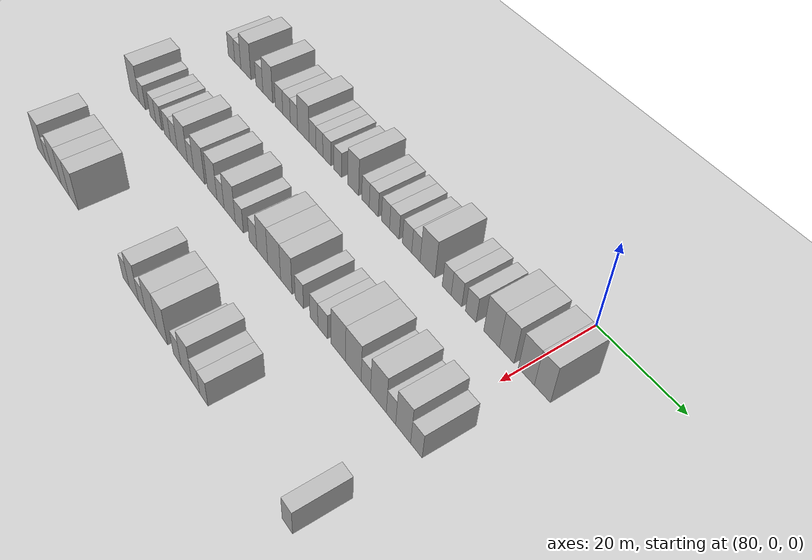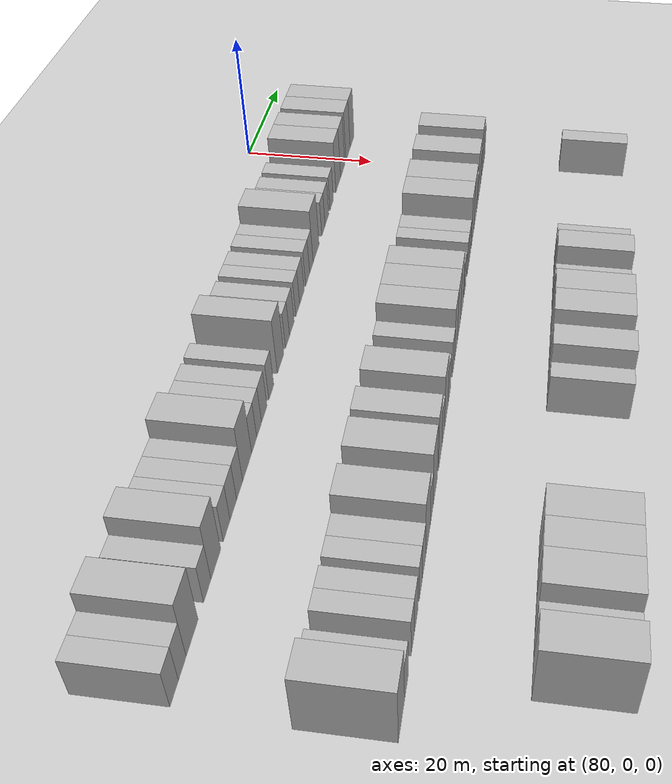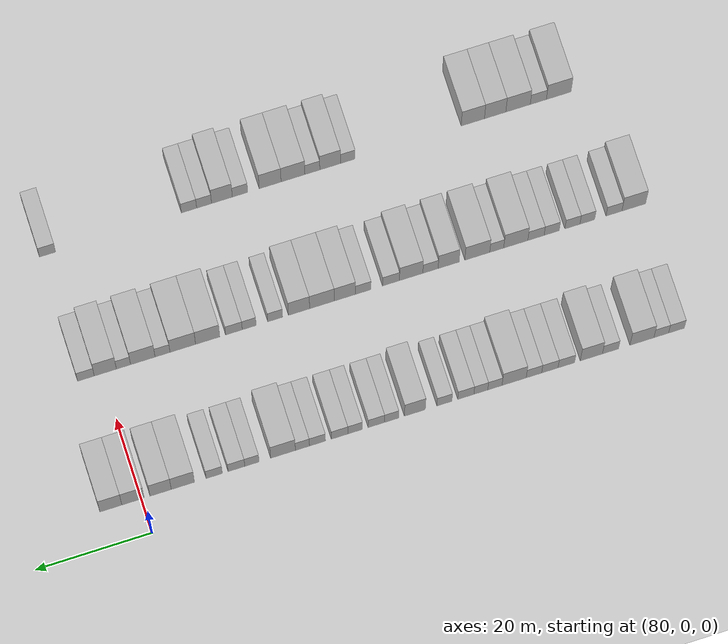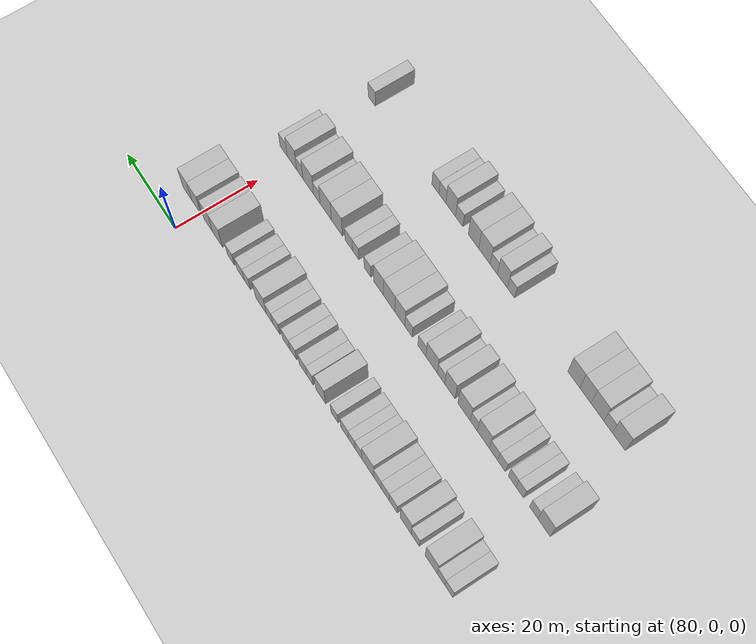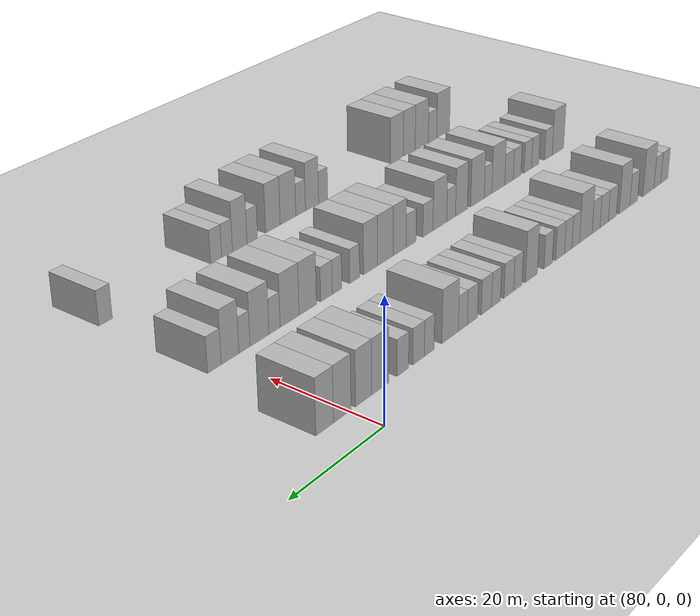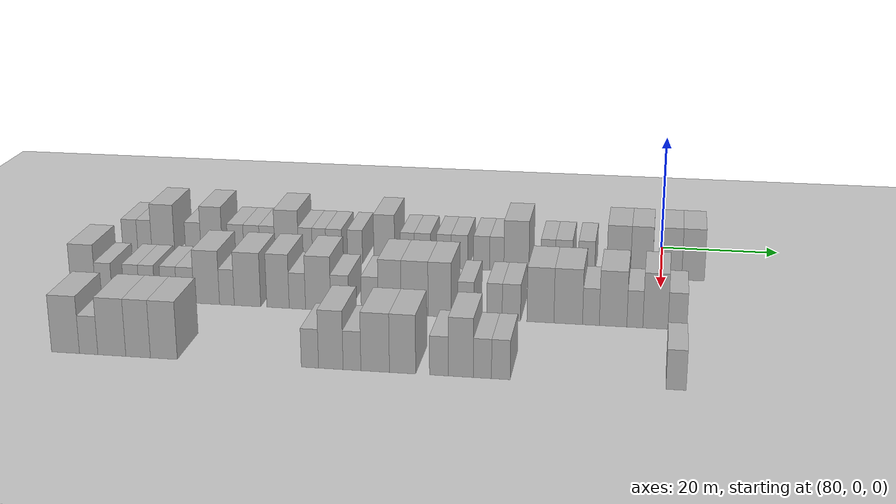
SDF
<sdf version="1.6">
 <world name="default">
  <include>
   <name>ground_plane_2</name>
   <uri>model://HANNAS_ground_plane</uri>
   <pose>100 0 0  0 0 0</pose>
  </include>
  <model name="building_644">
   <static>1</static>
   <pose>91.0000 -92.3657 0 0.000000 0.000000 0.000000</pose>
   <link name="link">
    <pose>0 0 3.00 0 0 0</pose>
    <collision name="collision"><geometry><box><size>10.0000 2.7340 6.0000</size></box></geometry></collision>
    <visual name="visual">
     <cast_shadows>0</cast_shadows>
     <geometry><box><size>10.0000 2.7340 6.0000</size></box></geometry>
     <material>
      <script>
       <uri>model://HANNAS_wall/materials/scripts</uri>
       <uri>model://HANNAS_wall/materials/textures</uri>
       <name>vrc/HANNAS_wall</name>
      </script>
     </material>
    </visual>
   </link>
  </model>
  <model name="building_645">
   <static>1</static>
   <pose>91.0000 -89.7164 0 0.000000 0.000000 0.000000</pose>
   <link name="link">
    <pose>0 0 3.00 0 0 0</pose>
    <collision name="collision"><geometry><box><size>10.0000 2.5647 6.0000</size></box></geometry></collision>
    <visual name="visual">
     <cast_shadows>0</cast_shadows>
     <geometry><box><size>10.0000 2.5647 6.0000</size></box></geometry>
     <material>
      <script>
       <uri>model://HANNAS_wall/materials/scripts</uri>
       <uri>model://HANNAS_wall/materials/textures</uri>
       <name>vrc/HANNAS_wall</name>
      </script>
     </material>
    </visual>
   </link>
  </model>
  <model name="building_646">
   <static>1</static>
   <pose>91.0000 -86.3577 0 0.000000 0.000000 0.000000</pose>
   <link name="link">
    <pose>0 0 4.50 0 0 0</pose>
    <collision name="collision"><geometry><box><size>10.0000 4.1526 9.0000</size></box></geometry></collision>
    <visual name="visual">
     <cast_shadows>0</cast_shadows>
     <geometry><box><size>10.0000 4.1526 9.0000</size></box></geometry>
     <material>
      <script>
       <uri>model://HANNAS_wall/materials/scripts</uri>
       <uri>model://HANNAS_wall/materials/textures</uri>
       <name>vrc/HANNAS_wall</name>
      </script>
     </material>
    </visual>
   </link>
  </model>
  <model name="building_647">
   <static>1</static>
   <pose>91.0000 -80.8911 0 0.000000 0.000000 0.000000</pose>
   <link name="link">
    <pose>0 0 3.00 0 0 0</pose>
    <collision name="collision"><geometry><box><size>10.0000 2.7808 6.0000</size></box></geometry></collision>
    <visual name="visual">
     <cast_shadows>0</cast_shadows>
     <geometry><box><size>10.0000 2.7808 6.0000</size></box></geometry>
     <material>
      <script>
       <uri>model://HANNAS_wall/materials/scripts</uri>
       <uri>model://HANNAS_wall/materials/textures</uri>
       <name>vrc/HANNAS_wall</name>
      </script>
     </material>
    </visual>
   </link>
  </model>
  <model name="building_648">
   <static>1</static>
   <pose>91.0000 -77.5793 0 0.000000 0.000000 0.000000</pose>
   <link name="link">
    <pose>0 0 4.50 0 0 0</pose>
    <collision name="collision"><geometry><box><size>10.0000 3.8427 9.0000</size></box></geometry></collision>
    <visual name="visual">
     <cast_shadows>0</cast_shadows>
     <geometry><box><size>10.0000 3.8427 9.0000</size></box></geometry>
     <material>
      <script>
       <uri>model://HANNAS_wall/materials/scripts</uri>
       <uri>model://HANNAS_wall/materials/textures</uri>
       <name>vrc/HANNAS_wall</name>
      </script>
     </material>
    </visual>
   </link>
  </model>
  <model name="building_649">
   <static>1</static>
   <pose>91.0000 -73.2296 0 0.000000 0.000000 0.000000</pose>
   <link name="link">
    <pose>0 0 3.00 0 0 0</pose>
    <collision name="collision"><geometry><box><size>10.0000 2.8567 6.0000</size></box></geometry></collision>
    <visual name="visual">
     <cast_shadows>0</cast_shadows>
     <geometry><box><size>10.0000 2.8567 6.0000</size></box></geometry>
     <material>
      <script>
       <uri>model://HANNAS_wall/materials/scripts</uri>
       <uri>model://HANNAS_wall/materials/textures</uri>
       <name>vrc/HANNAS_wall</name>
      </script>
     </material>
    </visual>
   </link>
  </model>
  <model name="building_650">
   <static>1</static>
   <pose>91.0000 -70.3840 0 0.000000 0.000000 0.000000</pose>
   <link name="link">
    <pose>0 0 3.00 0 0 0</pose>
    <collision name="collision"><geometry><box><size>10.0000 2.8347 6.0000</size></box></geometry></collision>
    <visual name="visual">
     <cast_shadows>0</cast_shadows>
     <geometry><box><size>10.0000 2.8347 6.0000</size></box></geometry>
     <material>
      <script>
       <uri>model://HANNAS_wall/materials/scripts</uri>
       <uri>model://HANNAS_wall/materials/textures</uri>
       <name>vrc/HANNAS_wall</name>
      </script>
     </material>
    </visual>
   </link>
  </model>
  <model name="building_651">
   <static>1</static>
   <pose>91.0000 -67.6231 0 0.000000 0.000000 0.000000</pose>
   <link name="link">
    <pose>0 0 3.00 0 0 0</pose>
    <collision name="collision"><geometry><box><size>10.0000 2.6871 6.0000</size></box></geometry></collision>
    <visual name="visual">
     <cast_shadows>0</cast_shadows>
     <geometry><box><size>10.0000 2.6871 6.0000</size></box></geometry>
     <material>
      <script>
       <uri>model://HANNAS_wall/materials/scripts</uri>
       <uri>model://HANNAS_wall/materials/textures</uri>
       <name>vrc/HANNAS_wall</name>
      </script>
     </material>
    </visual>
   </link>
  </model>
  <model name="building_652">
   <static>1</static>
   <pose>91.0000 -64.1847 0 0.000000 0.000000 0.000000</pose>
   <link name="link">
    <pose>0 0 4.50 0 0 0</pose>
    <collision name="collision"><geometry><box><size>10.0000 4.1896 9.0000</size></box></geometry></collision>
    <visual name="visual">
     <cast_shadows>0</cast_shadows>
     <geometry><box><size>10.0000 4.1896 9.0000</size></box></geometry>
     <material>
      <script>
       <uri>model://HANNAS_wall/materials/scripts</uri>
       <uri>model://HANNAS_wall/materials/textures</uri>
       <name>vrc/HANNAS_wall</name>
      </script>
     </material>
    </visual>
   </link>
  </model>
  <model name="building_653">
   <static>1</static>
   <pose>91.0000 -60.8591 0 0.000000 0.000000 0.000000</pose>
   <link name="link">
    <pose>0 0 3.00 0 0 0</pose>
    <collision name="collision"><geometry><box><size>10.0000 2.4617 6.0000</size></box></geometry></collision>
    <visual name="visual">
     <cast_shadows>0</cast_shadows>
     <geometry><box><size>10.0000 2.4617 6.0000</size></box></geometry>
     <material>
      <script>
       <uri>model://HANNAS_wall/materials/scripts</uri>
       <uri>model://HANNAS_wall/materials/textures</uri>
       <name>vrc/HANNAS_wall</name>
      </script>
     </material>
    </visual>
   </link>
  </model>
  <model name="building_654">
   <static>1</static>
   <pose>91.0000 -58.4278 0 0.000000 0.000000 0.000000</pose>
   <link name="link">
    <pose>0 0 3.00 0 0 0</pose>
    <collision name="collision"><geometry><box><size>10.0000 2.4009 6.0000</size></box></geometry></collision>
    <visual name="visual">
     <cast_shadows>0</cast_shadows>
     <geometry><box><size>10.0000 2.4009 6.0000</size></box></geometry>
     <material>
      <script>
       <uri>model://HANNAS_wall/materials/scripts</uri>
       <uri>model://HANNAS_wall/materials/textures</uri>
       <name>vrc/HANNAS_wall</name>
      </script>
     </material>
    </visual>
   </link>
  </model>
  <model name="building_655">
   <static>1</static>
   <pose>91.0000 -55.8279 0 0.000000 0.000000 0.000000</pose>
   <link name="link">
    <pose>0 0 3.00 0 0 0</pose>
    <collision name="collision"><geometry><box><size>10.0000 2.7987 6.0000</size></box></geometry></collision>
    <visual name="visual">
     <cast_shadows>0</cast_shadows>
     <geometry><box><size>10.0000 2.7987 6.0000</size></box></geometry>
     <material>
      <script>
       <uri>model://HANNAS_wall/materials/scripts</uri>
       <uri>model://HANNAS_wall/materials/textures</uri>
       <name>vrc/HANNAS_wall</name>
      </script>
     </material>
    </visual>
   </link>
  </model>
  <model name="building_656">
   <static>1</static>
   <pose>91.0000 -52.1252 0 0.000000 0.000000 0.000000</pose>
   <link name="link">
    <pose>0 0 3.00 0 0 0</pose>
    <collision name="collision"><geometry><box><size>10.0000 2.6067 6.0000</size></box></geometry></collision>
    <visual name="visual">
     <cast_shadows>0</cast_shadows>
     <geometry><box><size>10.0000 2.6067 6.0000</size></box></geometry>
     <material>
      <script>
       <uri>model://HANNAS_wall/materials/scripts</uri>
       <uri>model://HANNAS_wall/materials/textures</uri>
       <name>vrc/HANNAS_wall</name>
      </script>
     </material>
    </visual>
   </link>
  </model>
  <model name="building_657">
   <static>1</static>
   <pose>91.0000 -47.0164 0 0.000000 0.000000 0.000000</pose>
   <link name="link">
    <pose>0 0 4.50 0 0 0</pose>
    <collision name="collision"><geometry><box><size>10.0000 3.6109 9.0000</size></box></geometry></collision>
    <visual name="visual">
     <cast_shadows>0</cast_shadows>
     <geometry><box><size>10.0000 3.6109 9.0000</size></box></geometry>
     <material>
      <script>
       <uri>model://HANNAS_wall/materials/scripts</uri>
       <uri>model://HANNAS_wall/materials/textures</uri>
       <name>vrc/HANNAS_wall</name>
      </script>
     </material>
    </visual>
   </link>
  </model>
  <model name="building_658">
   <static>1</static>
   <pose>91.0000 -43.0022 0 0.000000 0.000000 0.000000</pose>
   <link name="link">
    <pose>0 0 3.00 0 0 0</pose>
    <collision name="collision"><geometry><box><size>10.0000 2.4174 6.0000</size></box></geometry></collision>
    <visual name="visual">
     <cast_shadows>0</cast_shadows>
     <geometry><box><size>10.0000 2.4174 6.0000</size></box></geometry>
     <material>
      <script>
       <uri>model://HANNAS_wall/materials/scripts</uri>
       <uri>model://HANNAS_wall/materials/textures</uri>
       <name>vrc/HANNAS_wall</name>
      </script>
     </material>
    </visual>
   </link>
  </model>
  <model name="building_659">
   <static>1</static>
   <pose>91.0000 -40.3811 0 0.000000 0.000000 0.000000</pose>
   <link name="link">
    <pose>0 0 3.00 0 0 0</pose>
    <collision name="collision"><geometry><box><size>10.0000 2.8250 6.0000</size></box></geometry></collision>
    <visual name="visual">
     <cast_shadows>0</cast_shadows>
     <geometry><box><size>10.0000 2.8250 6.0000</size></box></geometry>
     <material>
      <script>
       <uri>model://HANNAS_wall/materials/scripts</uri>
       <uri>model://HANNAS_wall/materials/textures</uri>
       <name>vrc/HANNAS_wall</name>
      </script>
     </material>
    </visual>
   </link>
  </model>
  <model name="building_660">
   <static>1</static>
   <pose>91.0000 -36.7195 0 0.000000 0.000000 0.000000</pose>
   <link name="link">
    <pose>0 0 3.00 0 0 0</pose>
    <collision name="collision"><geometry><box><size>10.0000 2.4981 6.0000</size></box></geometry></collision>
    <visual name="visual">
     <cast_shadows>0</cast_shadows>
     <geometry><box><size>10.0000 2.4981 6.0000</size></box></geometry>
     <material>
      <script>
       <uri>model://HANNAS_wall/materials/scripts</uri>
       <uri>model://HANNAS_wall/materials/textures</uri>
       <name>vrc/HANNAS_wall</name>
      </script>
     </material>
    </visual>
   </link>
  </model>
  <model name="building_661">
   <static>1</static>
   <pose>91.0000 -34.0339 0 0.000000 0.000000 0.000000</pose>
   <link name="link">
    <pose>0 0 3.00 0 0 0</pose>
    <collision name="collision"><geometry><box><size>10.0000 2.8731 6.0000</size></box></geometry></collision>
    <visual name="visual">
     <cast_shadows>0</cast_shadows>
     <geometry><box><size>10.0000 2.8731 6.0000</size></box></geometry>
     <material>
      <script>
       <uri>model://HANNAS_wall/materials/scripts</uri>
       <uri>model://HANNAS_wall/materials/textures</uri>
       <name>vrc/HANNAS_wall</name>
      </script>
     </material>
    </visual>
   </link>
  </model>
  <model name="building_662">
   <static>1</static>
   <pose>91.0000 -30.2234 0 0.000000 0.000000 0.000000</pose>
   <link name="link">
    <pose>0 0 3.00 0 0 0</pose>
    <collision name="collision"><geometry><box><size>10.0000 2.7480 6.0000</size></box></geometry></collision>
    <visual name="visual">
     <cast_shadows>0</cast_shadows>
     <geometry><box><size>10.0000 2.7480 6.0000</size></box></geometry>
     <material>
      <script>
       <uri>model://HANNAS_wall/materials/scripts</uri>
       <uri>model://HANNAS_wall/materials/textures</uri>
       <name>vrc/HANNAS_wall</name>
      </script>
     </material>
    </visual>
   </link>
  </model>
  <model name="building_663">
   <static>1</static>
   <pose>91.0000 -27.6344 0 0.000000 0.000000 0.000000</pose>
   <link name="link">
    <pose>0 0 3.00 0 0 0</pose>
    <collision name="collision"><geometry><box><size>10.0000 2.4300 6.0000</size></box></geometry></collision>
    <visual name="visual">
     <cast_shadows>0</cast_shadows>
     <geometry><box><size>10.0000 2.4300 6.0000</size></box></geometry>
     <material>
      <script>
       <uri>model://HANNAS_wall/materials/scripts</uri>
       <uri>model://HANNAS_wall/materials/textures</uri>
       <name>vrc/HANNAS_wall</name>
      </script>
     </material>
    </visual>
   </link>
  </model>
  <model name="building_664">
   <static>1</static>
   <pose>91.0000 -24.2932 0 0.000000 0.000000 0.000000</pose>
   <link name="link">
    <pose>0 0 4.50 0 0 0</pose>
    <collision name="collision"><geometry><box><size>10.0000 4.2524 9.0000</size></box></geometry></collision>
    <visual name="visual">
     <cast_shadows>0</cast_shadows>
     <geometry><box><size>10.0000 4.2524 9.0000</size></box></geometry>
     <material>
      <script>
       <uri>model://HANNAS_wall/materials/scripts</uri>
       <uri>model://HANNAS_wall/materials/textures</uri>
       <name>vrc/HANNAS_wall</name>
      </script>
     </material>
    </visual>
   </link>
  </model>
  <model name="building_665">
   <static>1</static>
   <pose>91.0000 -18.9390 0 0.000000 0.000000 0.000000</pose>
   <link name="link">
    <pose>0 0 3.00 0 0 0</pose>
    <collision name="collision"><geometry><box><size>10.0000 2.4559 6.0000</size></box></geometry></collision>
    <visual name="visual">
     <cast_shadows>0</cast_shadows>
     <geometry><box><size>10.0000 2.4559 6.0000</size></box></geometry>
     <material>
      <script>
       <uri>model://HANNAS_wall/materials/scripts</uri>
       <uri>model://HANNAS_wall/materials/textures</uri>
       <name>vrc/HANNAS_wall</name>
      </script>
     </material>
    </visual>
   </link>
  </model>
  <model name="building_666">
   <static>1</static>
   <pose>91.0000 -16.2807 0 0.000000 0.000000 0.000000</pose>
   <link name="link">
    <pose>0 0 3.00 0 0 0</pose>
    <collision name="collision"><geometry><box><size>10.0000 2.8607 6.0000</size></box></geometry></collision>
    <visual name="visual">
     <cast_shadows>0</cast_shadows>
     <geometry><box><size>10.0000 2.8607 6.0000</size></box></geometry>
     <material>
      <script>
       <uri>model://HANNAS_wall/materials/scripts</uri>
       <uri>model://HANNAS_wall/materials/textures</uri>
       <name>vrc/HANNAS_wall</name>
      </script>
     </material>
    </visual>
   </link>
  </model>
  <model name="building_667">
   <static>1</static>
   <pose>91.0000 -12.4613 0 0.000000 0.000000 0.000000</pose>
   <link name="link">
    <pose>0 0 3.00 0 0 0</pose>
    <collision name="collision"><geometry><box><size>10.0000 2.7781 6.0000</size></box></geometry></collision>
    <visual name="visual">
     <cast_shadows>0</cast_shadows>
     <geometry><box><size>10.0000 2.7781 6.0000</size></box></geometry>
     <material>
      <script>
       <uri>model://HANNAS_wall/materials/scripts</uri>
       <uri>model://HANNAS_wall/materials/textures</uri>
       <name>vrc/HANNAS_wall</name>
      </script>
     </material>
    </visual>
   </link>
  </model>
  <model name="building_668">
   <static>1</static>
   <pose>91.0000 -7.0805 0 0.000000 0.000000 0.000000</pose>
   <link name="link">
    <pose>0 0 4.50 0 0 0</pose>
    <collision name="collision"><geometry><box><size>10.0000 3.9834 9.0000</size></box></geometry></collision>
    <visual name="visual">
     <cast_shadows>0</cast_shadows>
     <geometry><box><size>10.0000 3.9834 9.0000</size></box></geometry>
     <material>
      <script>
       <uri>model://HANNAS_wall/materials/scripts</uri>
       <uri>model://HANNAS_wall/materials/textures</uri>
       <name>vrc/HANNAS_wall</name>
      </script>
     </material>
    </visual>
   </link>
  </model>
  <model name="building_669">
   <static>1</static>
   <pose>91.0000 -3.2698 0 0.000000 0.000000 0.000000</pose>
   <link name="link">
    <pose>0 0 4.50 0 0 0</pose>
    <collision name="collision"><geometry><box><size>10.0000 3.6381 9.0000</size></box></geometry></collision>
    <visual name="visual">
     <cast_shadows>0</cast_shadows>
     <geometry><box><size>10.0000 3.6381 9.0000</size></box></geometry>
     <material>
      <script>
       <uri>model://HANNAS_wall/materials/scripts</uri>
       <uri>model://HANNAS_wall/materials/textures</uri>
       <name>vrc/HANNAS_wall</name>
      </script>
     </material>
    </visual>
   </link>
  </model>
  <model name="building_670">
   <static>1</static>
   <pose>91.0000 1.4695 0 0.000000 0.000000 0.000000</pose>
   <link name="link">
    <pose>0 0 4.50 0 0 0</pose>
    <collision name="collision"><geometry><box><size>10.0000 3.8405 9.0000</size></box></geometry></collision>
    <visual name="visual">
     <cast_shadows>0</cast_shadows>
     <geometry><box><size>10.0000 3.8405 9.0000</size></box></geometry>
     <material>
      <script>
       <uri>model://HANNAS_wall/materials/scripts</uri>
       <uri>model://HANNAS_wall/materials/textures</uri>
       <name>vrc/HANNAS_wall</name>
      </script>
     </material>
    </visual>
   </link>
  </model>
  <model name="building_671">
   <static>1</static>
   <pose>91.0000 5.2664 0 0.000000 0.000000 0.000000</pose>
   <link name="link">
    <pose>0 0 4.50 0 0 0</pose>
    <collision name="collision"><geometry><box><size>10.0000 3.7534 9.0000</size></box></geometry></collision>
    <visual name="visual">
     <cast_shadows>0</cast_shadows>
     <geometry><box><size>10.0000 3.7534 9.0000</size></box></geometry>
     <material>
      <script>
       <uri>model://HANNAS_wall/materials/scripts</uri>
       <uri>model://HANNAS_wall/materials/textures</uri>
       <name>vrc/HANNAS_wall</name>
      </script>
     </material>
    </visual>
   </link>
  </model>
  <model name="building_838">
   <static>1</static>
   <pose>113.0000 -92.2905 0 0.000000 0.000000 0.000000</pose>
   <link name="link">
    <pose>0 0 4.50 0 0 0</pose>
    <collision name="collision"><geometry><box><size>10.0000 4.1372 9.0000</size></box></geometry></collision>
    <visual name="visual">
     <cast_shadows>0</cast_shadows>
     <geometry><box><size>10.0000 4.1372 9.0000</size></box></geometry>
     <material>
      <script>
       <uri>model://HANNAS_wall/materials/scripts</uri>
       <uri>model://HANNAS_wall/materials/textures</uri>
       <name>vrc/HANNAS_wall</name>
      </script>
     </material>
    </visual>
   </link>
  </model>
  <model name="building_839">
   <static>1</static>
   <pose>113.0000 -88.8385 0 0.000000 0.000000 0.000000</pose>
   <link name="link">
    <pose>0 0 3.00 0 0 0</pose>
    <collision name="collision"><geometry><box><size>10.0000 2.7670 6.0000</size></box></geometry></collision>
    <visual name="visual">
     <cast_shadows>0</cast_shadows>
     <geometry><box><size>10.0000 2.7670 6.0000</size></box></geometry>
     <material>
      <script>
       <uri>model://HANNAS_wall/materials/scripts</uri>
       <uri>model://HANNAS_wall/materials/textures</uri>
       <name>vrc/HANNAS_wall</name>
      </script>
     </material>
    </visual>
   </link>
  </model>
  <model name="building_840">
   <static>1</static>
   <pose>113.0000 -84.1738 0 0.000000 0.000000 0.000000</pose>
   <link name="link">
    <pose>0 0 3.00 0 0 0</pose>
    <collision name="collision"><geometry><box><size>10.0000 2.5624 6.0000</size></box></geometry></collision>
    <visual name="visual">
     <cast_shadows>0</cast_shadows>
     <geometry><box><size>10.0000 2.5624 6.0000</size></box></geometry>
     <material>
      <script>
       <uri>model://HANNAS_wall/materials/scripts</uri>
       <uri>model://HANNAS_wall/materials/textures</uri>
       <name>vrc/HANNAS_wall</name>
      </script>
     </material>
    </visual>
   </link>
  </model>
  <model name="building_841">
   <static>1</static>
   <pose>113.0000 -81.5839 0 0.000000 0.000000 0.000000</pose>
   <link name="link">
    <pose>0 0 3.00 0 0 0</pose>
    <collision name="collision"><geometry><box><size>10.0000 2.6174 6.0000</size></box></geometry></collision>
    <visual name="visual">
     <cast_shadows>0</cast_shadows>
     <geometry><box><size>10.0000 2.6174 6.0000</size></box></geometry>
     <material>
      <script>
       <uri>model://HANNAS_wall/materials/scripts</uri>
       <uri>model://HANNAS_wall/materials/textures</uri>
       <name>vrc/HANNAS_wall</name>
      </script>
     </material>
    </visual>
   </link>
  </model>
  <model name="building_842">
   <static>1</static>
   <pose>113.0000 -77.9615 0 0.000000 0.000000 0.000000</pose>
   <link name="link">
    <pose>0 0 3.00 0 0 0</pose>
    <collision name="collision"><geometry><box><size>10.0000 2.6276 6.0000</size></box></geometry></collision>
    <visual name="visual">
     <cast_shadows>0</cast_shadows>
     <geometry><box><size>10.0000 2.6276 6.0000</size></box></geometry>
     <material>
      <script>
       <uri>model://HANNAS_wall/materials/scripts</uri>
       <uri>model://HANNAS_wall/materials/textures</uri>
       <name>vrc/HANNAS_wall</name>
      </script>
     </material>
    </visual>
   </link>
  </model>
  <model name="building_843">
   <static>1</static>
   <pose>113.0000 -75.2230 0 0.000000 0.000000 0.000000</pose>
   <link name="link">
    <pose>0 0 3.00 0 0 0</pose>
    <collision name="collision"><geometry><box><size>10.0000 2.8494 6.0000</size></box></geometry></collision>
    <visual name="visual">
     <cast_shadows>0</cast_shadows>
     <geometry><box><size>10.0000 2.8494 6.0000</size></box></geometry>
     <material>
      <script>
       <uri>model://HANNAS_wall/materials/scripts</uri>
       <uri>model://HANNAS_wall/materials/textures</uri>
       <name>vrc/HANNAS_wall</name>
      </script>
     </material>
    </visual>
   </link>
  </model>
  <model name="building_844">
   <static>1</static>
   <pose>113.0000 -71.6987 0 0.000000 0.000000 0.000000</pose>
   <link name="link">
    <pose>0 0 4.50 0 0 0</pose>
    <collision name="collision"><geometry><box><size>10.0000 4.1992 9.0000</size></box></geometry></collision>
    <visual name="visual">
     <cast_shadows>0</cast_shadows>
     <geometry><box><size>10.0000 4.1992 9.0000</size></box></geometry>
     <material>
      <script>
       <uri>model://HANNAS_wall/materials/scripts</uri>
       <uri>model://HANNAS_wall/materials/textures</uri>
       <name>vrc/HANNAS_wall</name>
      </script>
     </material>
    </visual>
   </link>
  </model>
  <model name="building_845">
   <static>1</static>
   <pose>113.0000 -68.3842 0 0.000000 0.000000 0.000000</pose>
   <link name="link">
    <pose>0 0 3.00 0 0 0</pose>
    <collision name="collision"><geometry><box><size>10.0000 2.4298 6.0000</size></box></geometry></collision>
    <visual name="visual">
     <cast_shadows>0</cast_shadows>
     <geometry><box><size>10.0000 2.4298 6.0000</size></box></geometry>
     <material>
      <script>
       <uri>model://HANNAS_wall/materials/scripts</uri>
       <uri>model://HANNAS_wall/materials/textures</uri>
       <name>vrc/HANNAS_wall</name>
      </script>
     </material>
    </visual>
   </link>
  </model>
  <model name="building_846">
   <static>1</static>
   <pose>113.0000 -65.0013 0 0.000000 0.000000 0.000000</pose>
   <link name="link">
    <pose>0 0 4.50 0 0 0</pose>
    <collision name="collision"><geometry><box><size>10.0000 4.3359 9.0000</size></box></geometry></collision>
    <visual name="visual">
     <cast_shadows>0</cast_shadows>
     <geometry><box><size>10.0000 4.3359 9.0000</size></box></geometry>
     <material>
      <script>
       <uri>model://HANNAS_wall/materials/scripts</uri>
       <uri>model://HANNAS_wall/materials/textures</uri>
       <name>vrc/HANNAS_wall</name>
      </script>
     </material>
    </visual>
   </link>
  </model>
  <model name="building_847">
   <static>1</static>
   <pose>113.0000 -60.0083 0 0.000000 0.000000 0.000000</pose>
   <link name="link">
    <pose>0 0 4.50 0 0 0</pose>
    <collision name="collision"><geometry><box><size>10.0000 3.6501 9.0000</size></box></geometry></collision>
    <visual name="visual">
     <cast_shadows>0</cast_shadows>
     <geometry><box><size>10.0000 3.6501 9.0000</size></box></geometry>
     <material>
      <script>
       <uri>model://HANNAS_wall/materials/scripts</uri>
       <uri>model://HANNAS_wall/materials/textures</uri>
       <name>vrc/HANNAS_wall</name>
      </script>
     </material>
    </visual>
   </link>
  </model>
  <model name="building_848">
   <static>1</static>
   <pose>113.0000 -56.8560 0 0.000000 0.000000 0.000000</pose>
   <link name="link">
    <pose>0 0 3.00 0 0 0</pose>
    <collision name="collision"><geometry><box><size>10.0000 2.6545 6.0000</size></box></geometry></collision>
    <visual name="visual">
     <cast_shadows>0</cast_shadows>
     <geometry><box><size>10.0000 2.6545 6.0000</size></box></geometry>
     <material>
      <script>
       <uri>model://HANNAS_wall/materials/scripts</uri>
       <uri>model://HANNAS_wall/materials/textures</uri>
       <name>vrc/HANNAS_wall</name>
      </script>
     </material>
    </visual>
   </link>
  </model>
  <model name="building_849">
   <static>1</static>
   <pose>113.0000 -53.4936 0 0.000000 0.000000 0.000000</pose>
   <link name="link">
    <pose>0 0 4.50 0 0 0</pose>
    <collision name="collision"><geometry><box><size>10.0000 4.0704 9.0000</size></box></geometry></collision>
    <visual name="visual">
     <cast_shadows>0</cast_shadows>
     <geometry><box><size>10.0000 4.0704 9.0000</size></box></geometry>
     <material>
      <script>
       <uri>model://HANNAS_wall/materials/scripts</uri>
       <uri>model://HANNAS_wall/materials/textures</uri>
       <name>vrc/HANNAS_wall</name>
      </script>
     </material>
    </visual>
   </link>
  </model>
  <model name="building_850">
   <static>1</static>
   <pose>113.0000 -49.9912 0 0.000000 0.000000 0.000000</pose>
   <link name="link">
    <pose>0 0 3.00 0 0 0</pose>
    <collision name="collision"><geometry><box><size>10.0000 2.9344 6.0000</size></box></geometry></collision>
    <visual name="visual">
     <cast_shadows>0</cast_shadows>
     <geometry><box><size>10.0000 2.9344 6.0000</size></box></geometry>
     <material>
      <script>
       <uri>model://HANNAS_wall/materials/scripts</uri>
       <uri>model://HANNAS_wall/materials/textures</uri>
       <name>vrc/HANNAS_wall</name>
      </script>
     </material>
    </visual>
   </link>
  </model>
  <model name="building_851">
   <static>1</static>
   <pose>113.0000 -45.1682 0 0.000000 0.000000 0.000000</pose>
   <link name="link">
    <pose>0 0 3.00 0 0 0</pose>
    <collision name="collision"><geometry><box><size>10.0000 2.7115 6.0000</size></box></geometry></collision>
    <visual name="visual">
     <cast_shadows>0</cast_shadows>
     <geometry><box><size>10.0000 2.7115 6.0000</size></box></geometry>
     <material>
      <script>
       <uri>model://HANNAS_wall/materials/scripts</uri>
       <uri>model://HANNAS_wall/materials/textures</uri>
       <name>vrc/HANNAS_wall</name>
      </script>
     </material>
    </visual>
   </link>
  </model>
  <model name="building_852">
   <static>1</static>
   <pose>113.0000 -41.9796 0 0.000000 0.000000 0.000000</pose>
   <link name="link">
    <pose>0 0 4.50 0 0 0</pose>
    <collision name="collision"><geometry><box><size>10.0000 3.6657 9.0000</size></box></geometry></collision>
    <visual name="visual">
     <cast_shadows>0</cast_shadows>
     <geometry><box><size>10.0000 3.6657 9.0000</size></box></geometry>
     <material>
      <script>
       <uri>model://HANNAS_wall/materials/scripts</uri>
       <uri>model://HANNAS_wall/materials/textures</uri>
       <name>vrc/HANNAS_wall</name>
      </script>
     </material>
    </visual>
   </link>
  </model>
  <model name="building_853">
   <static>1</static>
   <pose>113.0000 -38.0155 0 0.000000 0.000000 0.000000</pose>
   <link name="link">
    <pose>0 0 4.50 0 0 0</pose>
    <collision name="collision"><geometry><box><size>10.0000 4.2626 9.0000</size></box></geometry></collision>
    <visual name="visual">
     <cast_shadows>0</cast_shadows>
     <geometry><box><size>10.0000 4.2626 9.0000</size></box></geometry>
     <material>
      <script>
       <uri>model://HANNAS_wall/materials/scripts</uri>
       <uri>model://HANNAS_wall/materials/textures</uri>
       <name>vrc/HANNAS_wall</name>
      </script>
     </material>
    </visual>
   </link>
  </model>
  <model name="building_854">
   <static>1</static>
   <pose>113.0000 -34.0452 0 0.000000 0.000000 0.000000</pose>
   <link name="link">
    <pose>0 0 4.50 0 0 0</pose>
    <collision name="collision"><geometry><box><size>10.0000 3.6779 9.0000</size></box></geometry></collision>
    <visual name="visual">
     <cast_shadows>0</cast_shadows>
     <geometry><box><size>10.0000 3.6779 9.0000</size></box></geometry>
     <material>
      <script>
       <uri>model://HANNAS_wall/materials/scripts</uri>
       <uri>model://HANNAS_wall/materials/textures</uri>
       <name>vrc/HANNAS_wall</name>
      </script>
     </material>
    </visual>
   </link>
  </model>
  <model name="building_855">
   <static>1</static>
   <pose>113.0000 -29.9156 0 0.000000 0.000000 0.000000</pose>
   <link name="link">
    <pose>0 0 3.00 0 0 0</pose>
    <collision name="collision"><geometry><box><size>10.0000 2.5812 6.0000</size></box></geometry></collision>
    <visual name="visual">
     <cast_shadows>0</cast_shadows>
     <geometry><box><size>10.0000 2.5812 6.0000</size></box></geometry>
     <material>
      <script>
       <uri>model://HANNAS_wall/materials/scripts</uri>
       <uri>model://HANNAS_wall/materials/textures</uri>
       <name>vrc/HANNAS_wall</name>
      </script>
     </material>
    </visual>
   </link>
  </model>
  <model name="building_856">
   <static>1</static>
   <pose>113.0000 -25.4234 0 0.000000 0.000000 0.000000</pose>
   <link name="link">
    <pose>0 0 3.00 0 0 0</pose>
    <collision name="collision"><geometry><box><size>10.0000 2.4033 6.0000</size></box></geometry></collision>
    <visual name="visual">
     <cast_shadows>0</cast_shadows>
     <geometry><box><size>10.0000 2.4033 6.0000</size></box></geometry>
     <material>
      <script>
       <uri>model://HANNAS_wall/materials/scripts</uri>
       <uri>model://HANNAS_wall/materials/textures</uri>
       <name>vrc/HANNAS_wall</name>
      </script>
     </material>
    </visual>
   </link>
  </model>
  <model name="building_857">
   <static>1</static>
   <pose>113.0000 -22.7824 0 0.000000 0.000000 0.000000</pose>
   <link name="link">
    <pose>0 0 3.00 0 0 0</pose>
    <collision name="collision"><geometry><box><size>10.0000 2.8788 6.0000</size></box></geometry></collision>
    <visual name="visual">
     <cast_shadows>0</cast_shadows>
     <geometry><box><size>10.0000 2.8788 6.0000</size></box></geometry>
     <material>
      <script>
       <uri>model://HANNAS_wall/materials/scripts</uri>
       <uri>model://HANNAS_wall/materials/textures</uri>
       <name>vrc/HANNAS_wall</name>
      </script>
     </material>
    </visual>
   </link>
  </model>
  <model name="building_858">
   <static>1</static>
   <pose>113.0000 -18.2509 0 0.000000 0.000000 0.000000</pose>
   <link name="link">
    <pose>0 0 4.50 0 0 0</pose>
    <collision name="collision"><geometry><box><size>10.0000 4.1841 9.0000</size></box></geometry></collision>
    <visual name="visual">
     <cast_shadows>0</cast_shadows>
     <geometry><box><size>10.0000 4.1841 9.0000</size></box></geometry>
     <material>
      <script>
       <uri>model://HANNAS_wall/materials/scripts</uri>
       <uri>model://HANNAS_wall/materials/textures</uri>
       <name>vrc/HANNAS_wall</name>
      </script>
     </material>
    </visual>
   </link>
  </model>
  <model name="building_859">
   <static>1</static>
   <pose>113.0000 -13.9482 0 0.000000 0.000000 0.000000</pose>
   <link name="link">
    <pose>0 0 4.50 0 0 0</pose>
    <collision name="collision"><geometry><box><size>10.0000 4.4214 9.0000</size></box></geometry></collision>
    <visual name="visual">
     <cast_shadows>0</cast_shadows>
     <geometry><box><size>10.0000 4.4214 9.0000</size></box></geometry>
     <material>
      <script>
       <uri>model://HANNAS_wall/materials/scripts</uri>
       <uri>model://HANNAS_wall/materials/textures</uri>
       <name>vrc/HANNAS_wall</name>
      </script>
     </material>
    </visual>
   </link>
  </model>
  <model name="building_860">
   <static>1</static>
   <pose>113.0000 -10.4506 0 0.000000 0.000000 0.000000</pose>
   <link name="link">
    <pose>0 0 3.00 0 0 0</pose>
    <collision name="collision"><geometry><box><size>10.0000 2.5736 6.0000</size></box></geometry></collision>
    <visual name="visual">
     <cast_shadows>0</cast_shadows>
     <geometry><box><size>10.0000 2.5736 6.0000</size></box></geometry>
     <material>
      <script>
       <uri>model://HANNAS_wall/materials/scripts</uri>
       <uri>model://HANNAS_wall/materials/textures</uri>
       <name>vrc/HANNAS_wall</name>
      </script>
     </material>
    </visual>
   </link>
  </model>
  <model name="building_861">
   <static>1</static>
   <pose>113.0000 -7.0500 0 0.000000 0.000000 0.000000</pose>
   <link name="link">
    <pose>0 0 4.50 0 0 0</pose>
    <collision name="collision"><geometry><box><size>10.0000 4.2276 9.0000</size></box></geometry></collision>
    <visual name="visual">
     <cast_shadows>0</cast_shadows>
     <geometry><box><size>10.0000 4.2276 9.0000</size></box></geometry>
     <material>
      <script>
       <uri>model://HANNAS_wall/materials/scripts</uri>
       <uri>model://HANNAS_wall/materials/textures</uri>
       <name>vrc/HANNAS_wall</name>
      </script>
     </material>
    </visual>
   </link>
  </model>
  <model name="building_862">
   <static>1</static>
   <pose>113.0000 -3.7148 0 0.000000 0.000000 0.000000</pose>
   <link name="link">
    <pose>0 0 3.00 0 0 0</pose>
    <collision name="collision"><geometry><box><size>10.0000 2.4429 6.0000</size></box></geometry></collision>
    <visual name="visual">
     <cast_shadows>0</cast_shadows>
     <geometry><box><size>10.0000 2.4429 6.0000</size></box></geometry>
     <material>
      <script>
       <uri>model://HANNAS_wall/materials/scripts</uri>
       <uri>model://HANNAS_wall/materials/textures</uri>
       <name>vrc/HANNAS_wall</name>
      </script>
     </material>
    </visual>
   </link>
  </model>
  <model name="building_863">
   <static>1</static>
   <pose>113.0000 -0.5901 0 0.000000 0.000000 0.000000</pose>
   <link name="link">
    <pose>0 0 4.50 0 0 0</pose>
    <collision name="collision"><geometry><box><size>10.0000 3.8064 9.0000</size></box></geometry></collision>
    <visual name="visual">
     <cast_shadows>0</cast_shadows>
     <geometry><box><size>10.0000 3.8064 9.0000</size></box></geometry>
     <material>
      <script>
       <uri>model://HANNAS_wall/materials/scripts</uri>
       <uri>model://HANNAS_wall/materials/textures</uri>
       <name>vrc/HANNAS_wall</name>
      </script>
     </material>
    </visual>
   </link>
  </model>
  <model name="building_864">
   <static>1</static>
   <pose>113.0000 2.7539 0 0.000000 0.000000 0.000000</pose>
   <link name="link">
    <pose>0 0 3.00 0 0 0</pose>
    <collision name="collision"><geometry><box><size>10.0000 2.8817 6.0000</size></box></geometry></collision>
    <visual name="visual">
     <cast_shadows>0</cast_shadows>
     <geometry><box><size>10.0000 2.8817 6.0000</size></box></geometry>
     <material>
      <script>
       <uri>model://HANNAS_wall/materials/scripts</uri>
       <uri>model://HANNAS_wall/materials/textures</uri>
       <name>vrc/HANNAS_wall</name>
      </script>
     </material>
    </visual>
   </link>
  </model>
  <model name="building_1022">
   <static>1</static>
   <pose>135.0000 -86.4524 0 0.000000 0.000000 0.000000</pose>
   <link name="link">
    <pose>0 0 4.50 0 0 0</pose>
    <collision name="collision"><geometry><box><size>10.0000 4.3092 9.0000</size></box></geometry></collision>
    <visual name="visual">
     <cast_shadows>0</cast_shadows>
     <geometry><box><size>10.0000 4.3092 9.0000</size></box></geometry>
     <material>
      <script>
       <uri>model://HANNAS_wall/materials/scripts</uri>
       <uri>model://HANNAS_wall/materials/textures</uri>
       <name>vrc/HANNAS_wall</name>
      </script>
     </material>
    </visual>
   </link>
  </model>
  <model name="building_1023">
   <static>1</static>
   <pose>135.0000 -82.8833 0 0.000000 0.000000 0.000000</pose>
   <link name="link">
    <pose>0 0 3.00 0 0 0</pose>
    <collision name="collision"><geometry><box><size>10.0000 2.8290 6.0000</size></box></geometry></collision>
    <visual name="visual">
     <cast_shadows>0</cast_shadows>
     <geometry><box><size>10.0000 2.8290 6.0000</size></box></geometry>
     <material>
      <script>
       <uri>model://HANNAS_wall/materials/scripts</uri>
       <uri>model://HANNAS_wall/materials/textures</uri>
       <name>vrc/HANNAS_wall</name>
      </script>
     </material>
    </visual>
   </link>
  </model>
  <model name="building_1024">
   <static>1</static>
   <pose>135.0000 -79.3275 0 0.000000 0.000000 0.000000</pose>
   <link name="link">
    <pose>0 0 4.50 0 0 0</pose>
    <collision name="collision"><geometry><box><size>10.0000 4.2827 9.0000</size></box></geometry></collision>
    <visual name="visual">
     <cast_shadows>0</cast_shadows>
     <geometry><box><size>10.0000 4.2827 9.0000</size></box></geometry>
     <material>
      <script>
       <uri>model://HANNAS_wall/materials/scripts</uri>
       <uri>model://HANNAS_wall/materials/textures</uri>
       <name>vrc/HANNAS_wall</name>
      </script>
     </material>
    </visual>
   </link>
  </model>
  <model name="building_1025">
   <static>1</static>
   <pose>135.0000 -75.3114 0 0.000000 0.000000 0.000000</pose>
   <link name="link">
    <pose>0 0 4.50 0 0 0</pose>
    <collision name="collision"><geometry><box><size>10.0000 3.7494 9.0000</size></box></geometry></collision>
    <visual name="visual">
     <cast_shadows>0</cast_shadows>
     <geometry><box><size>10.0000 3.7494 9.0000</size></box></geometry>
     <material>
      <script>
       <uri>model://HANNAS_wall/materials/scripts</uri>
       <uri>model://HANNAS_wall/materials/textures</uri>
       <name>vrc/HANNAS_wall</name>
      </script>
     </material>
    </visual>
   </link>
  </model>
  <model name="building_1026">
   <static>1</static>
   <pose>135.0000 -71.3991 0 0.000000 0.000000 0.000000</pose>
   <link name="link">
    <pose>0 0 4.50 0 0 0</pose>
    <collision name="collision"><geometry><box><size>10.0000 4.0752 9.0000</size></box></geometry></collision>
    <visual name="visual">
     <cast_shadows>0</cast_shadows>
     <geometry><box><size>10.0000 4.0752 9.0000</size></box></geometry>
     <material>
      <script>
       <uri>model://HANNAS_wall/materials/scripts</uri>
       <uri>model://HANNAS_wall/materials/textures</uri>
       <name>vrc/HANNAS_wall</name>
      </script>
     </material>
    </visual>
   </link>
  </model>
  <model name="building_1027">
   <static>1</static>
   <pose>135.0000 -49.5492 0 0.000000 0.000000 0.000000</pose>
   <link name="link">
    <pose>0 0 3.00 0 0 0</pose>
    <collision name="collision"><geometry><box><size>10.0000 2.5416 6.0000</size></box></geometry></collision>
    <visual name="visual">
     <cast_shadows>0</cast_shadows>
     <geometry><box><size>10.0000 2.5416 6.0000</size></box></geometry>
     <material>
      <script>
       <uri>model://HANNAS_wall/materials/scripts</uri>
       <uri>model://HANNAS_wall/materials/textures</uri>
       <name>vrc/HANNAS_wall</name>
      </script>
     </material>
    </visual>
   </link>
  </model>
  <model name="building_1028">
   <static>1</static>
   <pose>135.0000 -46.4741 0 0.000000 0.000000 0.000000</pose>
   <link name="link">
    <pose>0 0 4.50 0 0 0</pose>
    <collision name="collision"><geometry><box><size>10.0000 3.6085 9.0000</size></box></geometry></collision>
    <visual name="visual">
     <cast_shadows>0</cast_shadows>
     <geometry><box><size>10.0000 3.6085 9.0000</size></box></geometry>
     <material>
      <script>
       <uri>model://HANNAS_wall/materials/scripts</uri>
       <uri>model://HANNAS_wall/materials/textures</uri>
       <name>vrc/HANNAS_wall</name>
      </script>
     </material>
    </visual>
   </link>
  </model>
  <model name="building_1029">
   <static>1</static>
   <pose>135.0000 -43.3702 0 0.000000 0.000000 0.000000</pose>
   <link name="link">
    <pose>0 0 3.00 0 0 0</pose>
    <collision name="collision"><geometry><box><size>10.0000 2.5995 6.0000</size></box></geometry></collision>
    <visual name="visual">
     <cast_shadows>0</cast_shadows>
     <geometry><box><size>10.0000 2.5995 6.0000</size></box></geometry>
     <material>
      <script>
       <uri>model://HANNAS_wall/materials/scripts</uri>
       <uri>model://HANNAS_wall/materials/textures</uri>
       <name>vrc/HANNAS_wall</name>
      </script>
     </material>
    </visual>
   </link>
  </model>
  <model name="building_1030">
   <static>1</static>
   <pose>135.0000 -39.9957 0 0.000000 0.000000 0.000000</pose>
   <link name="link">
    <pose>0 0 4.50 0 0 0</pose>
    <collision name="collision"><geometry><box><size>10.0000 4.1493 9.0000</size></box></geometry></collision>
    <visual name="visual">
     <cast_shadows>0</cast_shadows>
     <geometry><box><size>10.0000 4.1493 9.0000</size></box></geometry>
     <material>
      <script>
       <uri>model://HANNAS_wall/materials/scripts</uri>
       <uri>model://HANNAS_wall/materials/textures</uri>
       <name>vrc/HANNAS_wall</name>
      </script>
     </material>
    </visual>
   </link>
  </model>
  <model name="building_1031">
   <static>1</static>
   <pose>135.0000 -36.0179 0 0.000000 0.000000 0.000000</pose>
   <link name="link">
    <pose>0 0 4.50 0 0 0</pose>
    <collision name="collision"><geometry><box><size>10.0000 3.8063 9.0000</size></box></geometry></collision>
    <visual name="visual">
     <cast_shadows>0</cast_shadows>
     <geometry><box><size>10.0000 3.8063 9.0000</size></box></geometry>
     <material>
      <script>
       <uri>model://HANNAS_wall/materials/scripts</uri>
       <uri>model://HANNAS_wall/materials/textures</uri>
       <name>vrc/HANNAS_wall</name>
      </script>
     </material>
    </visual>
   </link>
  </model>
  <model name="building_1032">
   <static>1</static>
   <pose>135.0000 -30.7747 0 0.000000 0.000000 0.000000</pose>
   <link name="link">
    <pose>0 0 3.00 0 0 0</pose>
    <collision name="collision"><geometry><box><size>10.0000 2.6802 6.0000</size></box></geometry></collision>
    <visual name="visual">
     <cast_shadows>0</cast_shadows>
     <geometry><box><size>10.0000 2.6802 6.0000</size></box></geometry>
     <material>
      <script>
       <uri>model://HANNAS_wall/materials/scripts</uri>
       <uri>model://HANNAS_wall/materials/textures</uri>
       <name>vrc/HANNAS_wall</name>
      </script>
     </material>
    </visual>
   </link>
  </model>
  <model name="building_1033">
   <static>1</static>
   <pose>135.0000 -27.6336 0 0.000000 0.000000 0.000000</pose>
   <link name="link">
    <pose>0 0 4.50 0 0 0</pose>
    <collision name="collision"><geometry><box><size>10.0000 3.6018 9.0000</size></box></geometry></collision>
    <visual name="visual">
     <cast_shadows>0</cast_shadows>
     <geometry><box><size>10.0000 3.6018 9.0000</size></box></geometry>
     <material>
      <script>
       <uri>model://HANNAS_wall/materials/scripts</uri>
       <uri>model://HANNAS_wall/materials/textures</uri>
       <name>vrc/HANNAS_wall</name>
      </script>
     </material>
    </visual>
   </link>
  </model>
  <model name="building_1034">
   <static>1</static>
   <pose>135.0000 -24.5329 0 0.000000 0.000000 0.000000</pose>
   <link name="link">
    <pose>0 0 3.00 0 0 0</pose>
    <collision name="collision"><geometry><box><size>10.0000 2.5997 6.0000</size></box></geometry></collision>
    <visual name="visual">
     <cast_shadows>0</cast_shadows>
     <geometry><box><size>10.0000 2.5997 6.0000</size></box></geometry>
     <material>
      <script>
       <uri>model://HANNAS_wall/materials/scripts</uri>
       <uri>model://HANNAS_wall/materials/textures</uri>
       <name>vrc/HANNAS_wall</name>
      </script>
     </material>
    </visual>
   </link>
  </model>
  <model name="building_1035">
   <static>1</static>
   <pose>135.0000 -21.9039 0 0.000000 0.000000 0.000000</pose>
   <link name="link">
    <pose>0 0 3.00 0 0 0</pose>
    <collision name="collision"><geometry><box><size>10.0000 2.6582 6.0000</size></box></geometry></collision>
    <visual name="visual">
     <cast_shadows>0</cast_shadows>
     <geometry><box><size>10.0000 2.6582 6.0000</size></box></geometry>
     <material>
      <script>
       <uri>model://HANNAS_wall/materials/scripts</uri>
       <uri>model://HANNAS_wall/materials/textures</uri>
       <name>vrc/HANNAS_wall</name>
      </script>
     </material>
    </visual>
   </link>
  </model>
  <model name="building_1036">
   <static>1</static>
   <pose>135.0000 2.6262 0 0.000000 0.000000 0.000000</pose>
   <link name="link">
    <pose>0 0 3.00 0 0 0</pose>
    <collision name="collision"><geometry><box><size>10.0000 2.8007 6.0000</size></box></geometry></collision>
    <visual name="visual">
     <cast_shadows>0</cast_shadows>
     <geometry><box><size>10.0000 2.8007 6.0000</size></box></geometry>
     <material>
      <script>
       <uri>model://HANNAS_wall/materials/scripts</uri>
       <uri>model://HANNAS_wall/materials/textures</uri>
       <name>vrc/HANNAS_wall</name>
      </script>
     </material>
    </visual>
   </link>
  </model>
 </world>
</sdf>
